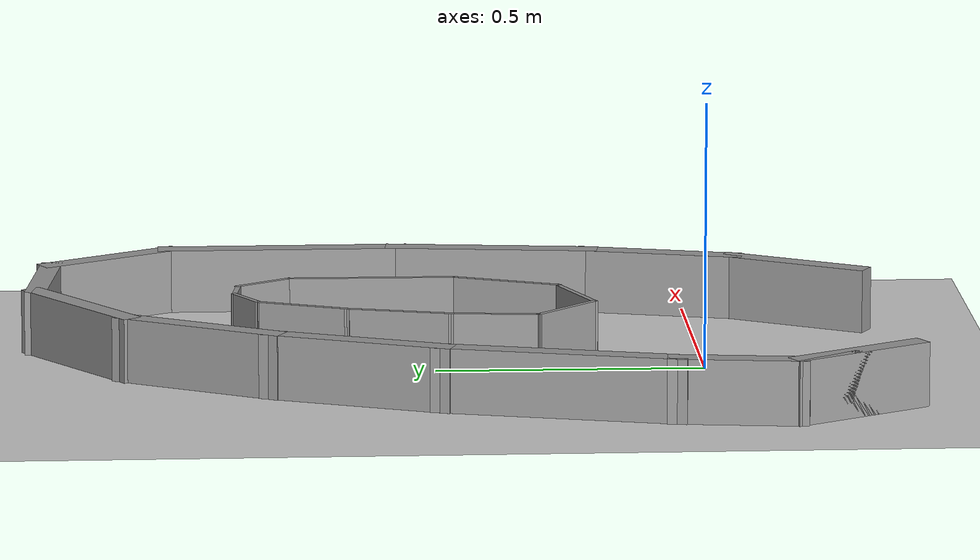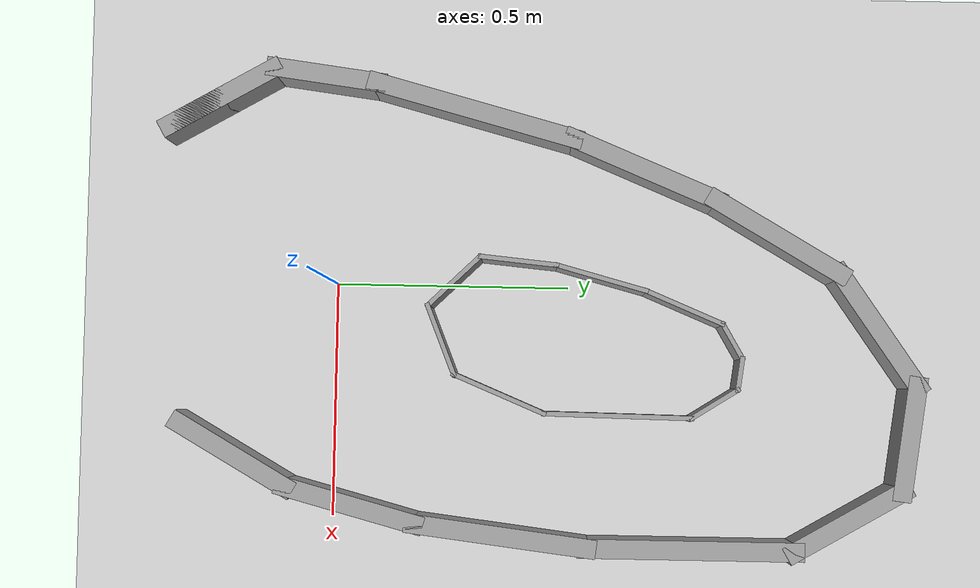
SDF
<sdf version='1.4'>
  <world name='default'>
    <light name='sun' type='directional'>
      <cast_shadows>1</cast_shadows>
      <pose>0 0 10 0 -0 0</pose>
      <diffuse>0.8 0.8 0.8 1</diffuse>
      <specular>0.2 0.2 0.2 1</specular>
      <attenuation>
        <range>1000</range>
        <constant>0.9</constant>
        <linear>0.01</linear>
        <quadratic>0.001</quadratic>
      </attenuation>
      <direction>-0.5 0.1 -0.9</direction>
    </light>
    <model name='ground_plane'>
      <static>1</static>
      <link name='link'>
        <collision name='collision'>
          <geometry>
            <plane>
              <normal>0 0 1</normal>
              <size>100 100</size>
            </plane>
          </geometry>
          <surface>
            <friction>
              <ode>
                <mu>100</mu>
                <mu2>50</mu2>
              </ode>
            </friction>
            <bounce/>
            <contact>
              <ode/>
            </contact>
          </surface>
          <max_contacts>10</max_contacts>
        </collision>
        <visual name='visual'>
          <cast_shadows>0</cast_shadows>
          <geometry>
            <plane>
              <normal>0 0 1</normal>
              <size>100 100</size>
            </plane>
          </geometry>
          <material>
            <script>
              <uri>file://media/materials/scripts/gazebo.material</uri>
              <name>Gazebo/Grey</name>
            </script>
          </material>
        </visual>
        <velocity_decay>
          <linear>0</linear>
          <angular>0</angular>
        </velocity_decay>
        <self_collide>0</self_collide>
        <kinematic>0</kinematic>
        <gravity>1</gravity>
      </link>
    </model>
    <physics type='ode'>
      <max_step_size>0.01</max_step_size>
      <real_time_factor>1</real_time_factor>
      <real_time_update_rate>100</real_time_update_rate>
      <gravity>0 0 -9.8</gravity>
    </physics>
    <scene>
      <ambient>0.4 0.4 0.4 1</ambient>
      <background>0.7 0.7 0.7 1</background>
      <shadows>1</shadows>
    </scene>
    <spherical_coordinates>
      <surface_model>EARTH_WGS84</surface_model>
      <latitude_deg>0</latitude_deg>
      <longitude_deg>0</longitude_deg>
      <elevation>0</elevation>
      <heading_deg>0</heading_deg>
    </spherical_coordinates>
    <gui fullscreen='0'>
      <camera name='user_camera'>
        <pose>0.27598 -1.43897 1.62083 -8.08324e-17 0.813796 1.40819</pose>
        <view_controller>orbit</view_controller>
      </camera>
    </gui>
    <model name='thymio_maze_small'>
      <link name='Wall_11'>
        <collision name='Wall_11_Collision'>
          <geometry>
            <box>
              <size>0.299198 0.04 0.12</size>
            </box>
          </geometry>
          <pose>0 0 0.06 0 -0 0</pose>
        </collision>
        <visual name='Wall_11_Visual'>
          <pose>0 0 0.06 0 -0 0</pose>
          <geometry>
            <box>
              <size>0.299198 0.04 0.12</size>
            </box>
          </geometry>
          <material>
            <script>
              <uri>file://media/materials/scripts/gazebo.material</uri>
              <name>Gazebo/Grey</name>
            </script>
          </material>
        </visual>
        <velocity_decay>
          <linear>0</linear>
          <angular>0</angular>
        </velocity_decay>
        <pose>0.369172 -0.202201 0 0 -0 1.0472</pose>
      </link>
      <link name='Wall_12'>
        <collision name='Wall_12_Collision'>
          <geometry>
            <box>
              <size>0.322573 0.04 0.12</size>
            </box>
          </geometry>
          <pose>0 0 0.06 0 -0 0</pose>
        </collision>
        <visual name='Wall_12_Visual'>
          <pose>0 0 0.06 0 -0 0</pose>
          <geometry>
            <box>
              <size>0.322573 0.04 0.12</size>
            </box>
          </geometry>
          <material>
            <script>
              <uri>file://media/materials/scripts/gazebo.material</uri>
              <name>Gazebo/Grey</name>
            </script>
          </material>
        </visual>
        <velocity_decay>
          <linear>0</linear>
          <angular>0</angular>
        </velocity_decay>
        <pose>0.470539 0.046508 0 0 -0 1.309</pose>
      </link>
      <link name='Wall_13'>
        <collision name='Wall_13_Collision'>
          <geometry>
            <box>
              <size>0.405894 0.04 0.12</size>
            </box>
          </geometry>
          <pose>0 0 0.06 0 -0 0</pose>
        </collision>
        <visual name='Wall_13_Visual'>
          <pose>0 0 0.06 0 -0 0</pose>
          <geometry>
            <box>
              <size>0.405894 0.04 0.12</size>
            </box>
          </geometry>
          <material>
            <script>
              <uri>file://media/materials/scripts/gazebo.material</uri>
              <name>Gazebo/Grey</name>
            </script>
          </material>
        </visual>
        <velocity_decay>
          <linear>0</linear>
          <angular>0</angular>
        </velocity_decay>
        <pose>0.529365 0.364568 0 0 -0 1.44883</pose>
      </link>
      <link name='Wall_14'>
        <collision name='Wall_14_Collision'>
          <geometry>
            <box>
              <size>0.476003 0.04 0.12</size>
            </box>
          </geometry>
          <pose>0 0 0.06 0 -0 0</pose>
        </collision>
        <visual name='Wall_14_Visual'>
          <pose>0 0 0.06 0 -0 0</pose>
          <geometry>
            <box>
              <size>0.476003 0.04 0.12</size>
            </box>
          </geometry>
          <material>
            <script>
              <uri>file://media/materials/scripts/gazebo.material</uri>
              <name>Gazebo/Grey</name>
            </script>
          </material>
        </visual>
        <velocity_decay>
          <linear>0</linear>
          <angular>0</angular>
        </velocity_decay>
        <pose>0.551623 0.764158 0 0 -0 1.5708</pose>
      </link>
      <link name='Wall_15'>
        <collision name='Wall_15_Collision'>
          <geometry>
            <box>
              <size>0.299518 0.04 0.12</size>
            </box>
          </geometry>
          <pose>0 0 0.06 0 -0 0</pose>
        </collision>
        <visual name='Wall_15_Visual'>
          <pose>0 0 0.06 0 -0 0</pose>
          <geometry>
            <box>
              <size>0.299518 0.04 0.12</size>
            </box>
          </geometry>
          <material>
            <script>
              <uri>file://media/materials/scripts/gazebo.material</uri>
              <name>Gazebo/Grey</name>
            </script>
          </material>
        </visual>
        <velocity_decay>
          <linear>0</linear>
          <angular>0</angular>
        </velocity_decay>
        <pose>0.486743 1.09453 0 0 -0 2.0944</pose>
      </link>
      <link name='Wall_16'>
        <collision name='Wall_16_Collision'>
          <geometry>
            <box>
              <size>0.264528 0.04 0.12</size>
            </box>
          </geometry>
          <pose>0 0 0.06 0 -0 0</pose>
        </collision>
        <visual name='Wall_16_Visual'>
          <pose>0 0 0.06 0 -0 0</pose>
          <geometry>
            <box>
              <size>0.264528 0.04 0.12</size>
            </box>
          </geometry>
          <material>
            <script>
              <uri>file://media/materials/scripts/gazebo.material</uri>
              <name>Gazebo/Grey</name>
            </script>
          </material>
        </visual>
        <velocity_decay>
          <linear>0</linear>
          <angular>0</angular>
        </velocity_decay>
        <pose>0.311045 1.2215 0 0 -0 3.01069</pose>
      </link>
      <link name='Wall_17'>
        <collision name='Wall_17_Collision'>
          <geometry>
            <box>
              <size>0.325364 0.04 0.12</size>
            </box>
          </geometry>
          <pose>0 0 0.06 0 -0 0</pose>
        </collision>
        <visual name='Wall_17_Visual'>
          <pose>0 0 0.06 0 -0 0</pose>
          <geometry>
            <box>
              <size>0.325364 0.04 0.12</size>
            </box>
          </geometry>
          <material>
            <script>
              <uri>file://media/materials/scripts/gazebo.material</uri>
              <name>Gazebo/Grey</name>
            </script>
          </material>
        </visual>
        <velocity_decay>
          <linear>0</linear>
          <angular>0</angular>
        </velocity_decay>
        <pose>0.08356 1.15395 0 0 0 -2.52813</pose>
      </link>
      <link name='Wall_18'>
        <collision name='Wall_18_Collision'>
          <geometry>
            <box>
              <size>0.344355 0.04 0.12</size>
            </box>
          </geometry>
          <pose>0 0 0.06 0 -0 0</pose>
        </collision>
        <visual name='Wall_18_Visual'>
          <pose>0 0 0.06 0 -0 0</pose>
          <geometry>
            <box>
              <size>0.344355 0.04 0.12</size>
            </box>
          </geometry>
          <material>
            <script>
              <uri>file://media/materials/scripts/gazebo.material</uri>
              <name>Gazebo/Grey</name>
            </script>
          </material>
        </visual>
        <velocity_decay>
          <linear>0</linear>
          <angular>0</angular>
        </velocity_decay>
        <pose>-0.109194 0.940014 0 0 0 -2.0944</pose>
      </link>
      <link name='Wall_19'>
        <collision name='Wall_19_Collision'>
          <geometry>
            <box>
              <size>0.368821 0.04 0.12</size>
            </box>
          </geometry>
          <pose>0 0 0.06 0 -0 0</pose>
        </collision>
        <visual name='Wall_19_Visual'>
          <pose>0 0 0.06 0 -0 0</pose>
          <geometry>
            <box>
              <size>0.368821 0.04 0.12</size>
            </box>
          </geometry>
          <material>
            <script>
              <uri>file://media/materials/scripts/gazebo.material</uri>
              <name>Gazebo/Grey</name>
            </script>
          </material>
        </visual>
        <velocity_decay>
          <linear>0</linear>
          <angular>0</angular>
        </velocity_decay>
        <pose>-0.247876 0.656195 0 0 0 -1.96136</pose>
      </link>
      <link name='Wall_20'>
        <collision name='Wall_20_Collision'>
          <geometry>
            <box>
              <size>0.473226 0.04 0.12</size>
            </box>
          </geometry>
          <pose>0 0 0.06 0 -0 0</pose>
        </collision>
        <visual name='Wall_20_Visual'>
          <pose>0 0 0.06 0 -0 0</pose>
          <geometry>
            <box>
              <size>0.473226 0.04 0.12</size>
            </box>
          </geometry>
          <material>
            <script>
              <uri>file://media/materials/scripts/gazebo.material</uri>
              <name>Gazebo/Grey</name>
            </script>
          </material>
        </visual>
        <velocity_decay>
          <linear>0</linear>
          <angular>0</angular>
        </velocity_decay>
        <pose>-0.366532 0.294934 0 0 0 -1.8326</pose>
      </link>
      <link name='Wall_21'>
        <collision name='Wall_21_Collision'>
          <geometry>
            <box>
              <size>0.257213 0.04 0.12</size>
            </box>
          </geometry>
          <pose>0 0 0.06 0 -0 0</pose>
        </collision>
        <visual name='Wall_21_Visual'>
          <pose>0 0 0.06 0 -0 0</pose>
          <geometry>
            <box>
              <size>0.257213 0.04 0.12</size>
            </box>
          </geometry>
          <material>
            <script>
              <uri>file://media/materials/scripts/gazebo.material</uri>
              <name>Gazebo/Grey</name>
            </script>
          </material>
        </visual>
        <velocity_decay>
          <linear>0</linear>
          <angular>0</angular>
        </velocity_decay>
        <pose>-0.436772 -0.021976 0 0 0 -1.7017</pose>
      </link>
      <link name='Wall_23'>
        <collision name='Wall_23_Collision'>
          <geometry>
            <box>
              <size>0.289062 0.04 0.12</size>
            </box>
          </geometry>
          <pose>0 0 0.06 0 -0 0</pose>
        </collision>
        <visual name='Wall_23_Visual'>
          <pose>0 0 0.06 0 -0 0</pose>
          <geometry>
            <box>
              <size>0.289062 0.04 0.12</size>
            </box>
          </geometry>
          <material>
            <script>
              <uri>file://media/materials/scripts/gazebo.material</uri>
              <name>Gazebo/Grey</name>
            </script>
          </material>
        </visual>
        <velocity_decay>
          <linear>0</linear>
          <angular>0</angular>
        </velocity_decay>
        <pose>-0.385 -0.244 0 0 0 -1.04966</pose>
      </link>
      <link name='Wall_24'>
        <collision name='Wall_24_Collision'>
          <geometry>
            <box>
              <size>0.289062 0.04 0.12</size>
            </box>
          </geometry>
          <pose>0 0 0.06 0 -0 0</pose>
        </collision>
        <visual name='Wall_24_Visual'>
          <pose>0 0 0.06 0 -0 0</pose>
          <geometry>
            <box>
              <size>0.289062 0.04 0.12</size>
            </box>
          </geometry>
          <material>
            <script>
              <uri>file://media/materials/scripts/gazebo.material</uri>
              <name>Gazebo/Grey</name>
            </script>
          </material>
        </visual>
        <velocity_decay>
          <linear>0</linear>
          <angular>0</angular>
        </velocity_decay>
        <pose>-0.385 -0.244 0 0 -0 2.09193</pose>
      </link>
      <link name='Wall_26'>
        <collision name='Wall_26_Collision'>
          <geometry>
            <box>
              <size>0.165473 0.01 0.12</size>
            </box>
          </geometry>
          <pose>0 0 0.06 0 -0 0</pose>
        </collision>
        <visual name='Wall_26_Visual'>
          <pose>0 0 0.06 0 -0 0</pose>
          <geometry>
            <box>
              <size>0.165473 0.01 0.12</size>
            </box>
          </geometry>
          <material>
            <script>
              <uri>file://media/materials/scripts/gazebo.material</uri>
              <name>Gazebo/Grey</name>
            </script>
          </material>
        </visual>
        <velocity_decay>
          <linear>0</linear>
          <angular>0</angular>
        </velocity_decay>
        <pose>0.120555 0.231847 0 0 -0 0.381605</pose>
      </link>
      <link name='Wall_27'>
        <collision name='Wall_27_Collision'>
          <geometry>
            <box>
              <size>0.21716 0.01 0.12</size>
            </box>
          </geometry>
          <pose>0 0 0.06 0 -0 0</pose>
        </collision>
        <visual name='Wall_27_Visual'>
          <pose>0 0 0.06 0 -0 0</pose>
          <geometry>
            <box>
              <size>0.21716 0.01 0.12</size>
            </box>
          </geometry>
          <material>
            <script>
              <uri>file://media/materials/scripts/gazebo.material</uri>
              <name>Gazebo/Grey</name>
            </script>
          </material>
        </visual>
        <velocity_decay>
          <linear>0</linear>
          <angular>0</angular>
        </velocity_decay>
        <pose>0.231869 0.356016 0 0 -0 1.1781</pose>
      </link>
      <link name='Wall_28'>
        <collision name='Wall_28_Collision'>
          <geometry>
            <box>
              <size>0.32061 0.01 0.12</size>
            </box>
          </geometry>
          <pose>0 0 0.06 0 -0 0</pose>
        </collision>
        <visual name='Wall_28_Visual'>
          <pose>0 0 0.06 0 -0 0</pose>
          <geometry>
            <box>
              <size>0.32061 0.01 0.12</size>
            </box>
          </geometry>
          <material>
            <script>
              <uri>file://media/materials/scripts/gazebo.material</uri>
              <name>Gazebo/Grey</name>
            </script>
          </material>
        </visual>
        <velocity_decay>
          <linear>0</linear>
          <angular>0</angular>
        </velocity_decay>
        <pose>0.273625 0.606571 0 0 -0 1.55623</pose>
      </link>
      <link name='Wall_29'>
        <collision name='Wall_29_Collision'>
          <geometry>
            <box>
              <size>0.124286 0.01 0.12</size>
            </box>
          </geometry>
          <pose>0 0 0.06 0 -0 0</pose>
        </collision>
        <visual name='Wall_29_Visual'>
          <pose>0 0 0.06 0 -0 0</pose>
          <geometry>
            <box>
              <size>0.124286 0.01 0.12</size>
            </box>
          </geometry>
          <material>
            <script>
              <uri>file://media/materials/scripts/gazebo.material</uri>
              <name>Gazebo/Grey</name>
            </script>
          </material>
        </visual>
        <velocity_decay>
          <linear>0</linear>
          <angular>0</angular>
        </velocity_decay>
        <pose>0.245297 0.810042 0 0 -0 2.13566</pose>
      </link>
      <link name='Wall_30'>
        <collision name='Wall_30_Collision'>
          <geometry>
            <box>
              <size>0.076575 0.01 0.12</size>
            </box>
          </geometry>
          <pose>0 0 0.06 0 -0 0</pose>
        </collision>
        <visual name='Wall_30_Visual'>
          <pose>0 0 0.06 0 -0 0</pose>
          <geometry>
            <box>
              <size>0.076575 0.01 0.12</size>
            </box>
          </geometry>
          <material>
            <script>
              <uri>file://media/materials/scripts/gazebo.material</uri>
              <name>Gazebo/Grey</name>
            </script>
          </material>
        </visual>
        <velocity_decay>
          <linear>0</linear>
          <angular>0</angular>
        </velocity_decay>
        <pose>0.181705 0.862654 0 0 -0 3.01069</pose>
      </link>
      <link name='Wall_31'>
        <collision name='Wall_31_Collision'>
          <geometry>
            <box>
              <size>0.093769 0.01 0.12</size>
            </box>
          </geometry>
          <pose>0 0 0.06 0 -0 0</pose>
        </collision>
        <visual name='Wall_31_Visual'>
          <pose>0 0 0.06 0 -0 0</pose>
          <geometry>
            <box>
              <size>0.093769 0.01 0.12</size>
            </box>
          </geometry>
          <material>
            <script>
              <uri>file://media/materials/scripts/gazebo.material</uri>
              <name>Gazebo/Grey</name>
            </script>
          </material>
        </visual>
        <velocity_decay>
          <linear>0</linear>
          <angular>0</angular>
        </velocity_decay>
        <pose>0.112584 0.845792 0 0 0 -2.6107</pose>
      </link>
      <link name='Wall_32'>
        <collision name='Wall_32_Collision'>
          <geometry>
            <box>
              <size>0.185371 0.01 0.12</size>
            </box>
          </geometry>
          <pose>0 0 0.06 0 -0 0</pose>
        </collision>
        <visual name='Wall_32_Visual'>
          <pose>0 0 0.06 0 -0 0</pose>
          <geometry>
            <box>
              <size>0.185371 0.01 0.12</size>
            </box>
          </geometry>
          <material>
            <script>
              <uri>file://media/materials/scripts/gazebo.material</uri>
              <name>Gazebo/Grey</name>
            </script>
          </material>
        </visual>
        <velocity_decay>
          <linear>0</linear>
          <angular>0</angular>
        </velocity_decay>
        <pose>0.042909 0.743575 0 0 0 -1.96349</pose>
      </link>
      <link name='Wall_33'>
        <collision name='Wall_33_Collision'>
          <geometry>
            <box>
              <size>0.205937 0.01 0.12</size>
            </box>
          </geometry>
          <pose>0 0 0.06 0 -0 0</pose>
        </collision>
        <visual name='Wall_33_Visual'>
          <pose>0 0 0.06 0 -0 0</pose>
          <geometry>
            <box>
              <size>0.205937 0.01 0.12</size>
            </box>
          </geometry>
          <material>
            <script>
              <uri>file://media/materials/scripts/gazebo.material</uri>
              <name>Gazebo/Grey</name>
            </script>
          </material>
        </visual>
        <velocity_decay>
          <linear>0</linear>
          <angular>0</angular>
        </velocity_decay>
        <pose>-0.016003 0.567934 0 0 0 -1.8326</pose>
      </link>
      <link name='Wall_34'>
        <collision name='Wall_34_Collision'>
          <geometry>
            <box>
              <size>0.171857 0.01 0.12</size>
            </box>
          </geometry>
          <pose>0 0 0.06 0 -0 0</pose>
        </collision>
        <visual name='Wall_34_Visual'>
          <pose>0 0 0.06 0 -0 0</pose>
          <geometry>
            <box>
              <size>0.171857 0.01 0.12</size>
            </box>
          </geometry>
          <material>
            <script>
              <uri>file://media/materials/scripts/gazebo.material</uri>
              <name>Gazebo/Grey</name>
            </script>
          </material>
        </visual>
        <velocity_decay>
          <linear>0</linear>
          <angular>0</angular>
        </velocity_decay>
        <pose>-0.049129 0.392667 0 0 0 -1.66685</pose>
      </link>
      <link name='Wall_35'>
        <collision name='Wall_35_Collision'>
          <geometry>
            <box>
              <size>0.161789 0.01 0.12</size>
            </box>
          </geometry>
          <pose>0 0 0.06 0 -0 0</pose>
        </collision>
        <visual name='Wall_35_Visual'>
          <pose>0 0 0.06 0 -0 0</pose>
          <geometry>
            <box>
              <size>0.161789 0.01 0.12</size>
            </box>
          </geometry>
          <material>
            <script>
              <uri>file://media/materials/scripts/gazebo.material</uri>
              <name>Gazebo/Grey</name>
            </script>
          </material>
        </visual>
        <velocity_decay>
          <linear>0</linear>
          <angular>0</angular>
        </velocity_decay>
        <pose>-0.004081 0.257529 0 0 0 -0.801097</pose>
      </link>
      <static>1</static>
    </model>
  </world>
</sdf>
